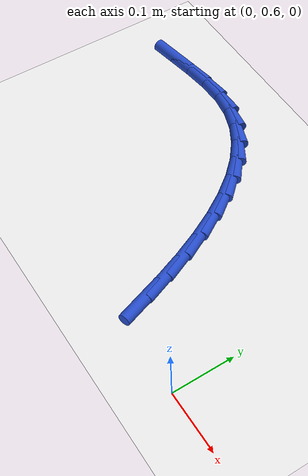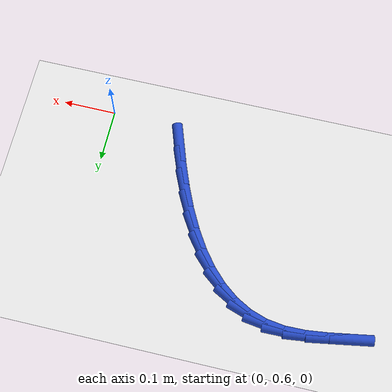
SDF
<sdf version="1.6">
 <world name="default">
  <model name="ground_plane">
   <static>1</static>
   <link name="link">
    <collision name="collision">
     <geometry><plane><normal>0 0 1</normal><size>100 100</size></plane></geometry>
     <surface><friction><ode><mu>100</mu><mu2>50</mu2></ode></friction></surface>
    </collision>
    <visual name="visual">
     <cast_shadows>0</cast_shadows>
     <geometry><plane><normal>0 0 1</normal><size>100 100</size></plane></geometry>
     <material>
      <script><uri>file://media/materials/scripts/gazebo.material</uri><name>Gazebo/WhiteGlow</name></script>
     </material>
    </visual>
   </link>
  </model>
  <model name="line">
   <link name="link_15">
    <pose>-0.13857940508787667 0.638720425853018 0.01 0 1.57 -1.2352221715384317</pose>
    <collision name="collision">
     <geometry><cylinder><radius>0.01</radius><length>0.08</length></cylinder></geometry>
    </collision>
    <visual name="visual">
     <material>
      <script><name>Gazebo/Blue</name><uri>file://media/materials/scripts/gazebo.material</uri></script>
     </material>
     <geometry><cylinder><radius>0.01</radius><length>0.08</length></cylinder></geometry>
    </visual>
   </link>
   <link name="link_16">
    <pose>-0.15409952855824682 0.6832206605954558 0.01 0 1.57 -1.194978563401989</pose>
    <collision name="collision">
     <geometry><cylinder><radius>0.01</radius><length>0.08</length></cylinder></geometry>
    </collision>
    <visual name="visual">
     <material>
      <script><name>Gazebo/Blue</name><uri>file://media/materials/scripts/gazebo.material</uri></script>
     </material>
     <geometry><cylinder><radius>0.01</radius><length>0.08</length></cylinder></geometry>
    </visual>
   </link>
   <link name="link_17">
    <pose>-0.1709453561889429 0.7259146566355439 0.01 0 1.57 -1.145073635421471</pose>
    <collision name="collision">
     <geometry><cylinder><radius>0.01</radius><length>0.08</length></cylinder></geometry>
    </collision>
    <visual name="visual">
     <material>
      <script><name>Gazebo/Blue</name><uri>file://media/materials/scripts/gazebo.material</uri></script>
     </material>
     <geometry><cylinder><radius>0.01</radius><length>0.08</length></cylinder></geometry>
    </visual>
   </link>
   <link name="link_18">
    <pose>-0.18927034748463029 0.7663266606714356 0.01 0 1.57 -1.0834199719086508</pose>
    <collision name="collision">
     <geometry><cylinder><radius>0.01</radius><length>0.08</length></cylinder></geometry>
    </collision>
    <visual name="visual">
     <material>
      <script><name>Gazebo/Blue</name><uri>file://media/materials/scripts/gazebo.material</uri></script>
     </material>
     <geometry><cylinder><radius>0.01</radius><length>0.08</length></cylinder></geometry>
    </visual>
   </link>
   <link name="link_19">
    <pose>-0.20922796194997412 0.8039809194012835 0.01 0 1.57 -1.0073913971181214</pose>
    <collision name="collision">
     <geometry><cylinder><radius>0.01</radius><length>0.08</length></cylinder></geometry>
    </collision>
    <visual name="visual">
     <material>
      <script><name>Gazebo/Blue</name><uri>file://media/materials/scripts/gazebo.material</uri></script>
     </material>
     <geometry><cylinder><radius>0.01</radius><length>0.08</length></cylinder></geometry>
    </visual>
   </link>
   <link name="link_20">
    <pose>-0.2309716590896398 0.8384016795232405 0.01 0 1.57 -0.9138948361387474</pose>
    <collision name="collision">
     <geometry><cylinder><radius>0.01</radius><length>0.08</length></cylinder></geometry>
    </collision>
    <visual name="visual">
     <material>
      <script><name>Gazebo/Blue</name><uri>file://media/materials/scripts/gazebo.material</uri></script>
     </material>
     <geometry><cylinder><radius>0.01</radius><length>0.08</length></cylinder></geometry>
    </visual>
   </link>
   <link name="link_21">
    <pose>-0.25465489840829264 0.8691131877354601 0.01 0 1.57 -0.799741780718439</pose>
    <collision name="collision">
     <geometry><cylinder><radius>0.01</radius><length>0.08</length></cylinder></geometry>
    </collision>
    <visual name="visual">
     <material>
      <script><name>Gazebo/Blue</name><uri>file://media/materials/scripts/gazebo.material</uri></script>
     </material>
     <geometry><cylinder><radius>0.01</radius><length>0.08</length></cylinder></geometry>
    </visual>
   </link>
   <link name="link_22">
    <pose>-0.28043113941059783 0.8956396907360942 0.01 0 1.57 -0.6626045799479172</pose>
    <collision name="collision">
     <geometry><cylinder><radius>0.01</radius><length>0.08</length></cylinder></geometry>
    </collision>
    <visual name="visual">
     <material>
      <script><name>Gazebo/Blue</name><uri>file://media/materials/scripts/gazebo.material</uri></script>
     </material>
     <geometry><cylinder><radius>0.01</radius><length>0.08</length></cylinder></geometry>
    </visual>
   </link>
   <link name="link_23">
    <pose>-0.3084538416012208 0.9175054352232963 0.01 0 1.57 -0.5027622009771362</pose>
    <collision name="collision">
     <geometry><cylinder><radius>0.01</radius><length>0.08</length></cylinder></geometry>
    </collision>
    <visual name="visual">
     <material>
      <script><name>Gazebo/Blue</name><uri>file://media/materials/scripts/gazebo.material</uri></script>
     </material>
     <geometry><cylinder><radius>0.01</radius><length>0.08</length></cylinder></geometry>
    </visual>
   </link>
   <link name="link_24">
    <pose>-0.33887646448482656 0.9342346678952188 0.01 0 1.57 -0.32515732627907473</pose>
    <collision name="collision">
     <geometry><cylinder><radius>0.01</radius><length>0.08</length></cylinder></geometry>
    </collision>
    <visual name="visual">
     <material>
      <script><name>Gazebo/Blue</name><uri>file://media/materials/scripts/gazebo.material</uri></script>
     </material>
     <geometry><cylinder><radius>0.01</radius><length>0.08</length></cylinder></geometry>
    </visual>
   </link>
   <link name="link_25">
    <pose>-0.3718524675660807 0.9453516354500151 0.01 0 1.57 -0.1401075279615521</pose>
    <collision name="collision">
     <geometry><cylinder><radius>0.01</radius><length>0.08</length></cylinder></geometry>
    </collision>
    <visual name="visual">
     <material>
      <script><name>Gazebo/Blue</name><uri>file://media/materials/scripts/gazebo.material</uri></script>
     </material>
     <geometry><cylinder><radius>0.01</radius><length>0.08</length></cylinder></geometry>
    </visual>
   </link>
   <link name="link_26">
    <pose>-0.40753412628165114 0.9503838754427036 0.01 0 1.57 0.021815216355873506</pose>
    <collision name="collision">
     <geometry><cylinder><radius>0.01</radius><length>0.08</length></cylinder></geometry>
    </collision>
    <visual name="visual">
     <material>
      <script><name>Gazebo/Blue</name><uri>file://media/materials/scripts/gazebo.material</uri></script>
     </material>
     <geometry><cylinder><radius>0.01</radius><length>0.08</length></cylinder></geometry>
    </visual>
   </link>
   <link name="link_27">
    <pose>-0.44582563750177606 0.9495484053022043 0.01 0 1.57 0.12240143287835614</pose>
    <collision name="collision">
     <geometry><cylinder><radius>0.01</radius><length>0.08</length></cylinder></geometry>
    </collision>
    <visual name="visual">
     <material>
      <script><name>Gazebo/Blue</name><uri>file://media/materials/scripts/gazebo.material</uri></script>
     </material>
     <geometry><cylinder><radius>0.01</radius><length>0.08</length></cylinder></geometry>
    </visual>
   </link>
   <link name="link_28">
    <pose>-0.4860791408080133 0.9445965644073989 0.01 0 1.57 0.16970273421269255</pose>
    <collision name="collision">
     <geometry><cylinder><radius>0.01</radius><length>0.08</length></cylinder></geometry>
    </collision>
    <visual name="visual">
     <material>
      <script><name>Gazebo/Blue</name><uri>file://media/materials/scripts/gazebo.material</uri></script>
     </material>
     <geometry><cylinder><radius>0.01</radius><length>0.08</length></cylinder></geometry>
    </visual>
   </link>
   <link name="link_29">
    <pose>-0.5275723012861633 0.9374866776364873 0.01 0 1.57 0.17227022121737576</pose>
    <collision name="collision">
     <geometry><cylinder><radius>0.01</radius><length>0.08</length></cylinder></geometry>
    </collision>
    <visual name="visual">
     <material>
      <script><name>Gazebo/Blue</name><uri>file://media/materials/scripts/gazebo.material</uri></script>
     </material>
     <geometry><cylinder><radius>0.01</radius><length>0.08</length></cylinder></geometry>
    </visual>
   </link>
  </model>
 </world>
</sdf>
